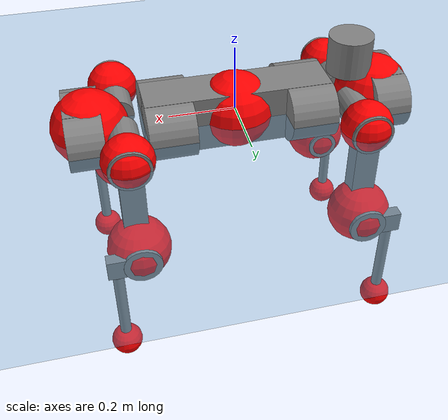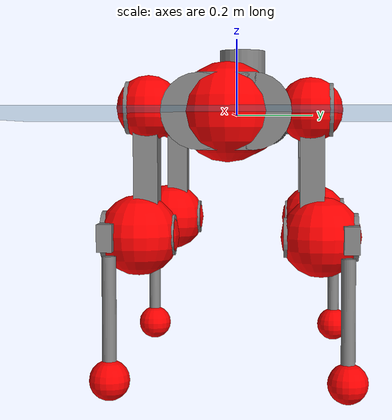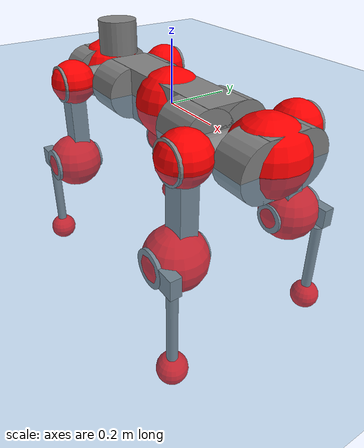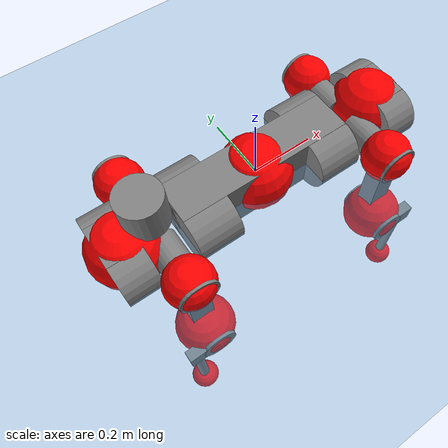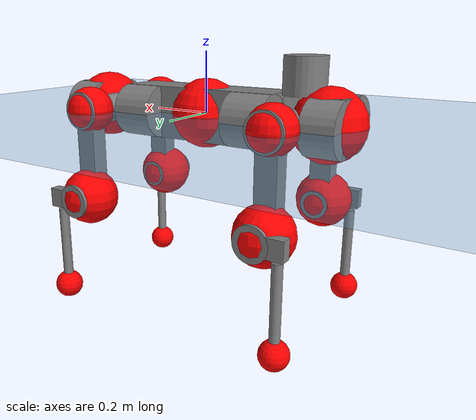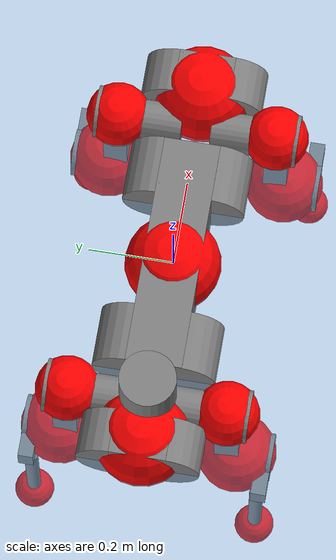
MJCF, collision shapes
<mujoco model="anymal_c">
  <compiler angle="radian" assetdir="assets" balanceinertia="true" inertiafromgeom="false"/>

  <option timestep="0.005" density="1.2" viscosity="2e-05"/>

  <size nkey="1"/>

  <visual>
    <quality shadowsize="8192"/>
    <map shadowclip="0.5"/>
  </visual>

  <default>
    <default class="/">
      <material specular="0" shininess="0.25"/>
      <geom contype="0" conaffinity="0" group="1" solref="-1000 -80"/>
      <site size="0.01 0.005 0.005" group="5"/>
      <general forcelimited="true" forcerange="-80 80" biastype="affine" gainprm="80" biasprm="0 -80 -2"/>
      <default class="anymal_c">
        <joint armature="0.01" damping="0.01" frictionloss="0.1"/>
        <default class="visual">
          <geom type="mesh" group="2"/>
          <default class="visual_zflip"/>
        </default>
        <default class="collision">
          <geom type="cylinder" group="3"/>
          <default class="foot">
            <geom size="0.03 0 0" type="sphere" condim="6" priority="1" friction="0.8 0.02 0.01" solimp="0.015 1 0.03"/>
          </default>
        </default>
      </default>
      <default class="reward_collision_sphere">
        <geom group="5" rgba="1 0 0 1"/>
      </default>
    </default>
  </default>

  <asset>
    <texture type="skybox" colorspace="auto" name="//unnamed_texture_0" builtin="gradient" rgb1="0.95 0.95 0.95" rgb2="0.95 0.95 0.95" width="100" height="600"/>
    <texture type="2d" colorspace="auto" name="texplane" builtin="checker" rgb1="0.345 0.575 0.748" rgb2="0.345 0.575 0.748" markrgb="1 1 1" width="512" height="512"/>
    <texture type="2d" colorspace="linear" name="base" file="base.png"/>
    <texture type="2d" colorspace="linear" name="top_shell" file="top_shell.png"/>
    <texture type="2d" colorspace="linear" name="bottom_shell" file="bottom_shell.png"/>
    <texture type="2d" colorspace="linear" name="remote" file="remote.png"/>
    <texture type="2d" colorspace="linear" name="hatch" file="hatch.png"/>
    <texture type="2d" colorspace="linear" name="handle" file="handle.png"/>
    <texture type="2d" colorspace="linear" name="face" file="face.png"/>
    <texture type="2d" colorspace="linear" name="battery" file="battery.png"/>
    <texture type="2d" colorspace="linear" name="lidar_cage" file="lidar_cage.png"/>
    <texture type="2d" colorspace="linear" name="depth_camera" file="depth_camera.png"/>
    <texture type="2d" colorspace="linear" name="wide_angle_camera" file="wide_angle_camera.png"/>
    <texture type="2d" colorspace="linear" name="lidar" file="lidar.png"/>
    <texture type="2d" colorspace="linear" name="drive" file="drive.png"/>
    <texture type="2d" colorspace="linear" name="hip_l" file="hip_l.png"/>
    <texture type="2d" colorspace="linear" name="shank_l" file="shank_l.png"/>
    <texture type="2d" colorspace="linear" name="foot" file="foot.png"/>
    <texture type="2d" colorspace="linear" name="thigh" file="thigh.png"/>
    <texture type="2d" colorspace="linear" name="shank_r" file="shank_r.png"/>
    <texture type="2d" colorspace="linear" name="hip_r" file="hip_r.png"/>
    <material name="MatPlane" class="/" texture="texplane" texuniform="true" texrepeat="2 2" specular="0.9" shininess="0.5"/>
    <material name="black_plastic" class="/" rgba="0.007 0.007 0.007 1"/>
    <material name="green" class="/" rgba="0.052 0.178 0.033 1"/>
    <material name="red" class="/" rgba="0.178 0.006 0.005 1"/>
    <material name="yellow" class="/" rgba="0.178 0.119 0.006 1"/>
    <material name="lwl" class="/" rgba="0.8 0.8 0.8 1"/>
    <material name="base" class="/" texture="base"/>
    <material name="top_shell" class="/" texture="top_shell"/>
    <material name="bottom_shell" class="/" texture="bottom_shell"/>
    <material name="hip_l" class="/" texture="hip_l"/>
    <material name="thigh" class="/" texture="thigh"/>
    <material name="shank_l" class="/" texture="shank_l"/>
    <material name="foot" class="/" texture="foot"/>
    <material name="hip_r" class="/" texture="hip_r"/>
    <material name="shank" class="/" texture="shank_r"/>
    <material name="hatch" class="/" texture="hatch"/>
    <material name="remote" class="/" texture="remote"/>
    <material name="handle" class="/" texture="handle"/>
    <material name="face" class="/" texture="face"/>
    <material name="depth_camera" class="/" texture="depth_camera"/>
    <material name="wide_angle_camera" class="/" texture="wide_angle_camera"/>
    <material name="battery" class="/" texture="battery"/>
    <material name="lidar_cage" class="/" texture="lidar_cage"/>
    <material name="lidar" class="/" texture="lidar"/>
    <material name="drive" class="/" texture="drive"/>
    <mesh name="base_0" class="/" file="base_0.obj"/>
    <mesh name="base_1" class="/" file="base_1.obj"/>
    <mesh name="base_2" class="/" file="base_2.obj"/>
    <mesh name="base_3" class="/" file="base_3.obj"/>
    <mesh name="base_4" class="/" file="base_4.obj"/>
    <mesh name="base_5" class="/" file="base_5.obj"/>
    <mesh name="top_shell" class="/" file="top_shell.obj"/>
    <mesh name="bottom_shell" class="/" file="bottom_shell.obj"/>
    <mesh name="remote" class="/" file="remote.obj"/>
    <mesh name="handle" class="/" file="handle.obj"/>
    <mesh name="face" class="/" file="face.obj"/>
    <mesh name="wide_angle_camera" class="/" file="wide_angle_camera.obj"/>
    <mesh name="depth_camera" class="/" file="depth_camera.obj"/>
    <mesh name="battery" class="/" file="battery.obj"/>
    <mesh name="lidar_cage" class="/" file="lidar_cage.obj"/>
    <mesh name="lidar" class="/" file="lidar.obj"/>
    <mesh name="drive" class="/" file="drive.obj"/>
    <mesh name="hip_l" class="/" file="hip_l.obj"/>
    <mesh name="thigh" class="/" file="thigh.obj"/>
    <mesh name="shank_l" class="/" file="shank_l.obj"/>
    <mesh name="foot" class="/" file="foot.obj"/>
    <mesh name="hip_r" class="/" file="hip_r.obj"/>
    <mesh name="hatch" class="/" file="hatch.obj"/>
    <mesh name="shank_r" class="/" file="shank_r.obj"/>
  </asset>

  <worldbody>
    <geom name="floor" class="/" size="100 100 0.125" type="plane" group="0" material="MatPlane"/>
    <light name="toplight_shadow" class="/" pos="0 0 5" dir="0.0990148 0.0990148 -0.990148" type="directional" ambient="0.04 0.04 0.04" diffuse="0.55 0.55 0.55" specular="0.12 0.12 0.12"/>
    <light name="toplight_fill" class="/" pos="0 0 5" dir="0.0990148 0.0990148 -0.990148" type="directional" castshadow="false" ambient="0.04 0.04 0.04" diffuse="0.3 0.3 0.3" specular="0.08 0.08 0.08"/>
    <body name="trunk" childclass="anymal_c" pos="-0.00104895 -8.94627e-06 0.000312283" quat="1 -0.000202745 -3.91574e-05 0.000153387">
      <inertial pos="0.00230282 -0.000267542 0.0516613" quat="0.499396 0.493128 0.504789 0.50261" mass="16.4159" diaginertia="0.520316 0.279303 0.281142"/>
      <joint name="//unnamed_joint_0" type="free" armature="0" damping="0" frictionloss="0"/>
      <geom name="//unnamed_geom_1" class="visual" material="green" mesh="base_0"/>
      <geom name="//unnamed_geom_2" class="visual" material="yellow" mesh="base_1"/>
      <geom name="//unnamed_geom_3" class="visual" material="red" mesh="base_2"/>
      <geom name="//unnamed_geom_4" class="visual" material="black_plastic" mesh="base_3"/>
      <geom name="//unnamed_geom_5" class="visual" material="lwl" mesh="base_4"/>
      <geom name="//unnamed_geom_6" class="visual" material="base" mesh="base_5"/>
      <geom name="trunk_1" class="collision" size="0.275624 0.0665298 0.0855384" type="box"/>
      <geom name="trunk_2" class="collision" size="0.0855384 0.0689059" pos="0.207557 0.0594976 0" quat="0.707107 0 0.707107 0"/>
      <geom name="trunk_3" class="collision" size="0.0855384 0.0689059" pos="-0.207557 0.0594976 0" quat="0.707107 0 0.707107 0"/>
      <geom name="trunk_4" class="collision" size="0.0855384 0.0689059" pos="0.207557 -0.0594976 0" quat="0.707107 0 0.707107 0"/>
      <geom name="trunk_5" class="collision" size="0.0855384 0.0689059" pos="-0.207557 -0.0594976 0" quat="0.707107 0 0.707107 0"/>
      <geom name="//unnamed_geom_12" class="visual" material="top_shell" mesh="top_shell"/>
      <geom name="//unnamed_geom_13" class="visual" material="bottom_shell" mesh="bottom_shell"/>
      <geom name="//unnamed_geom_14" class="visual" material="remote" mesh="remote"/>
      <geom name="//unnamed_geom_15" class="visual" material="handle" mesh="handle"/>
      <geom name="//unnamed_geom_16" class="visual" pos="0.39555 0 0" quat="1 0 0 0" material="face" mesh="face"/>
      <geom name="trunk_6" class="collision" size="0.0522735 0.0665298 0.0855384" pos="0.448036 0 0" type="box"/>
      <geom name="//unnamed_geom_18" class="collision" size="0.0855384 0.0522735" pos="0.448036 0.0594976 0" quat="0.707107 0 0.707107 0"/>
      <geom name="//unnamed_geom_19" class="collision" size="0.0855384 0.0522735" pos="0.448036 -0.0594976 0" quat="0.707107 0 0.707107 0"/>
      <geom name="//unnamed_geom_20" class="visual" pos="0.440549 0 -0.0312782" quat="0.965926 0 0.258819 0" material="depth_camera" mesh="depth_camera"/>
      <geom name="//unnamed_geom_21" class="visual" pos="0.489547 0 0.015674" material="wide_angle_camera" mesh="wide_angle_camera"/>
      <geom name="//unnamed_geom_22" class="visual_zflip" pos="-0.39555 0 0" quat="0 0 0 1" material="face" mesh="face"/>
      <geom name="trunk_7" class="collision" size="0.0522735 0.0665298 0.0855384" pos="-0.448036 0 0" quat="0 0 0 1" type="box"/>
      <geom name="//unnamed_geom_24" class="collision" size="0.0855384 0.0522735" pos="-0.448036 -0.0594976 0" quat="0 -0.707107 0 0.707107"/>
      <geom name="//unnamed_geom_25" class="collision" size="0.0855384 0.0522735" pos="-0.448036 0.0594976 0" quat="0 -0.707107 0 0.707107"/>
      <geom name="//unnamed_geom_26" class="visual" pos="-0.440549 0 -0.0312782" quat="0 -0.258819 0 0.965926" material="depth_camera" mesh="depth_camera"/>
      <geom name="//unnamed_geom_27" class="visual_zflip" pos="-0.489547 0 0.015674" quat="0 0 0 1" material="wide_angle_camera" mesh="wide_angle_camera"/>
      <geom name="//unnamed_geom_28" class="visual" material="battery" mesh="battery"/>
      <geom name="//unnamed_geom_29" class="visual" pos="0 0.0636234 0.0297114" quat="0.683013 -0.183013 0.183013 0.683013" material="depth_camera" mesh="depth_camera"/>
      <geom name="//unnamed_geom_30" class="visual" pos="0 -0.0636234 0.0297114" quat="0.683013 0.183013 0.183013 -0.683013" material="depth_camera" mesh="depth_camera"/>
      <geom name="//unnamed_geom_31" class="visual" pos="-0.347359 0 0.0769568" quat="1 0 0 0" material="lidar_cage" mesh="lidar_cage"/>
      <geom name="trunk_8" class="collision" size="0.0665298 0.0570256" pos="-0.347359 0 0.139779"/>
      <geom name="//unnamed_geom_33" class="visual" pos="-0.347359 -4.09835e-05 0.148888" quat="0.707107 0 0 -0.707107" material="lidar" mesh="lidar"/>
      <geom name="//unnamed_geom_34" class="visual" pos="0.286189 0.0884664 -3.39939e-09" quat="0.258819 0.965926 0 0" material="drive" mesh="drive"/>
      <geom name="//unnamed_geom_35" class="visual" pos="0.286189 -0.0884664 3.39939e-09" quat="0.258819 -0.965926 0 0" material="drive" mesh="drive"/>
      <geom name="//unnamed_geom_36" class="visual" pos="-0.286189 0.0884664 3.39939e-09" quat="0 0 0.965926 -0.258819" material="drive" mesh="drive"/>
      <geom name="//unnamed_geom_37" class="visual" pos="-0.286189 -0.0884664 -3.39939e-09" quat="0 0 -0.965926 -0.258819" material="drive" mesh="drive"/>
      <geom name="//unnamed_geom_38" class="visual" pos="0.110697 0 0.0764332" quat="1 0 0 0" material="hatch" mesh="hatch"/>
      <geom name="//unnamed_geom_39" class="reward_collision_sphere" size="0.114051"/>
      <geom name="//unnamed_geom_40" class="reward_collision_sphere" size="0.114051" pos="0.429427 0 0"/>
      <geom name="//unnamed_geom_41" class="reward_collision_sphere" size="0.114051" pos="-0.429427 0 0"/>
      <site name="imu" pos="0.237409 -0.00571224 0.0533905" size="0.00950426"/>
      <camera name="track" pos="0 -1.69993 0" quat="0.707107 0.707107 0 0" mode="trackcom"/>
      <camera name="ego_camera" pos="0.429427 0 -0.0418812" quat="-0.5 -0.5 0.5 0.5"/>
      <body name="LF_HIP" pos="0.286574 0.0889582 -4.82065e-05" quat="0.258515 0.966006 0.000619275 0.00115573">
        <inertial pos="0.0544079 -0.0121332 -0.00758253" quat="-0.127132 0.709236 -0.12985 0.681147" mass="2.45969" diaginertia="0.00477494 0.0022452 0.00424824"/>
        <joint name="LF_HAA" pos="0 0 0" axis="0.999992 -0.000822268 0.00389795" range="-0.673891 0.488748" armature="0.0101698" damping="0.0123318" frictionloss="0.0956556"/>
        <geom name="//unnamed_geom_42" class="visual" pos="0 -0.000199971 3.28451e-05" quat="0.258819 -0.965926 0 0" material="hip_l" mesh="hip_l"/>
        <geom name="//unnamed_geom_43" class="visual" pos="0.0571616 -0.0679599 -0.0406943" quat="0.183013 -0.683013 0.683013 0.183013" material="drive" mesh="drive"/>
        <geom name="//unnamed_geom_44" class="collision" size="0.0475213 0.0665298" pos="0.0571615 -0.0101654 -0.00722975" quat="-0.353553 -0.612372 0.612372 -0.353553"/>
        <body name="LF_THIGH" pos="0.0574318 -0.062288 -0.0426859" quat="0.182858 -0.682964 0.683141 0.18287">
          <inertial pos="0.0294914 -0.0022129 -0.259754" quat="0.992644 -0.00364111 -0.0852155 0.0859282" mass="2.66289" diaginertia="0.0239705 0.0133402 0.00525946"/>
          <joint name="LF_HFE" pos="0 0 0" axis="0.999999 -0.00067333 0.00144612" range="-3.14293 3.18886" armature="0.00960921" damping="0" frictionloss="0.0952827"/>
          <geom name="//unnamed_geom_45" class="visual" pos="0.0020755 3.27051e-06 0" quat="0.707107 0 0 -0.707107" material="thigh" mesh="thigh"/>
          <geom name="//unnamed_geom_46" class="collision" size="0.0617777 0.0380171" pos="0.0381713 0 0" quat="0.5 0.5 -0.5 -0.5"/>
          <geom name="//unnamed_geom_47" class="collision" size="0.035641 0.0285128 0.134309" pos="0.0286285 0 -0.14796" quat="0.707107 0 0 -0.707107" type="box"/>
          <geom name="//unnamed_geom_48" class="visual" pos="0.0957146 0 -0.298404" quat="1 0 0 0" material="drive" mesh="drive"/>
          <geom name="//unnamed_geom_49" class="collision" size="0.0475213 0.0665298" pos="0.0289148 0 -0.298404" quat="0.707107 0 0.707107 0"/>
          <geom name="//unnamed_geom_50" class="reward_collision_sphere" size="0.0760341" pos="0.0238571 0 0"/>
          <body name="LF_SHANK" pos="0.0981996 0.00196535 -0.297367" quat="1 -1.34793e-05 6.73143e-06 -0.000106575">
            <inertial pos="0.00614522 -0.0520092 -0.0836702" quat="0.993003 -0.115517 -0.000572506 -0.024501" mass="0.518452" diaginertia="0.00811561 0.00413048 0.00140942"/>
            <joint name="LF_KFE" pos="0 0 0" axis="0.999999 0.000920559 -0.00143401" range="-3.12645 3.098" armature="0.00944926" damping="0.00931637" frictionloss="0.0940816"/>
            <geom name="//unnamed_geom_51" class="visual" pos="0.000676777 0.00360861 0" quat="0.707107 0 0 -0.707107" material="shank_l" mesh="shank_l"/>
            <geom name="LF_kfe_act" class="collision" size="0.0570256 0.0190085" pos="0.0190857 0 0" quat="0.5 0.5 -0.5 -0.5"/>
            <geom name="//unnamed_geom_53" class="collision" size="0.0546486 0.0320769 0.0180581" pos="0.0190857 -0.0488722 0" quat="0.5 0.5 -0.5 -0.5" type="box"/>
            <geom name="//unnamed_geom_54" class="visual" pos="0.0124532 -0.0735916 -0.353865" quat="0.382683 0 0 -0.92388" material="foot" mesh="foot"/>
            <geom name="LF_calf" class="collision" size="0.0166325 0.13425" pos="0.0124534 -0.0747545 -0.176932" quat="0.707107 0 0 -0.707107"/>
            <geom name="LF_foot" class="foot" size="0.0272028" pos="0.0124534 -0.0747545 -0.330307" quat="0.707107 0 0 -0.707107"/>
            <geom name="//unnamed_geom_57" class="reward_collision_sphere" size="0.0950426" pos="-0.0477141 0 0"/>
            <geom name="//unnamed_geom_58" class="reward_collision_sphere" size="0.0475213" pos="0.0124534 -0.0747545 -0.330307"/>
            <site name="LF_foot" class="foot" pos="0.0124534 -0.0747545 -0.330307" quat="0.707107 0 0 -0.707107" size="0.00950426"/>
          </body>
        </body>
      </body>
      <body name="RF_HIP" pos="0.286579 -0.089277 0.00252596" quat="0.258858 -0.965915 -0.000161072 2.95633e-05">
        <inertial pos="0.0551059 0.0127719 -0.00893207" quat="0.138558 0.675558 0.118451 0.714417" mass="2.45302" diaginertia="0.00478822 0.00222568 0.0042415"/>
        <joint name="RF_HAA" pos="0 0 0" axis="1 0.00040342 -0.000671152" range="-0.46984 0.731159" armature="0.00959127" damping="0.00973565" frictionloss="0.0901505"/>
        <geom name="//unnamed_geom_59" class="visual" pos="0 0.000199969 3.2845e-05" quat="0.258819 0.965926 0 0" material="hip_r" mesh="hip_r"/>
        <geom name="//unnamed_geom_60" class="visual" pos="0.0571615 0.0679599 -0.0406943" quat="0.183013 0.683013 0.683013 -0.183013" material="drive" mesh="drive"/>
        <geom name="//unnamed_geom_61" class="collision" size="0.0475213 0.0665298" pos="0.0571615 0.0101654 -0.00722975" quat="-0.353553 0.612372 0.612372 0.353553"/>
        <body name="RF_THIGH" pos="0.0571032 0.0619213 -0.0457622" quat="0.182797 0.682842 0.6832 -0.183167">
          <inertial pos="0.029294 -9.9225e-05 -0.259423" quat="0.993841 -0.00168849 -0.0802944 0.076352" mass="2.67927" diaginertia="0.0247093 0.0136398 0.00541636"/>
          <joint name="RF_HFE" pos="0 0 0" axis="1 -2.86368e-05 -0.000277919" stiffness="0.00510796" range="-3.19015 3.17129" armature="0.00880332" damping="0.0100181" frictionloss="0.0914736"/>
          <geom name="//unnamed_geom_62" class="visual" pos="0.0020755 3.27051e-06 0" quat="0.707107 0 0 -0.707107" material="thigh" mesh="thigh"/>
          <geom name="//unnamed_geom_63" class="collision" size="0.0617777 0.0380171" pos="0.0381713 0 0" quat="0.5 0.5 0.5 0.5"/>
          <geom name="//unnamed_geom_64" class="collision" size="0.035641 0.0285128 0.134309" pos="0.0286285 0 -0.14796" quat="0.707107 0 0 0.707107" type="box"/>
          <geom name="//unnamed_geom_65" class="visual" pos="0.0957146 0 -0.298404" quat="1 0 0 0" material="drive" mesh="drive"/>
          <geom name="//unnamed_geom_66" class="collision" size="0.0475213 0.0665298" pos="0.0289148 0 -0.298404" quat="0.707107 0 0.707107 0"/>
          <geom name="//unnamed_geom_67" class="reward_collision_sphere" size="0.0760341" pos="0.0238571 0 0"/>
          <body name="RF_SHANK" pos="0.0956383 0.000728822 -0.298884" quat="1 -1.27e-06 1.26096e-05 -4.86466e-05">
            <inertial pos="0.00470543 0.0523669 -0.0817214" quat="0.992889 0.116221 -0.00103778 0.0257392" mass="0.480094" diaginertia="0.00770615 0.00409307 0.00132539"/>
            <joint name="RF_KFE" pos="0 0 0" axis="0.999997 0.00213318 -0.000929052" range="-3.12221 3.13945" armature="0.0101039" damping="0.00898012" frictionloss="0.0950772"/>
            <geom name="//unnamed_geom_68" class="visual" pos="0.000676773 -0.0036086 0" quat="0.707107 0 0 0.707107" material="shank" mesh="shank_r"/>
            <geom name="RF_kfe_act" class="collision" size="0.0570256 0.0190085" pos="0.0190857 0 0" quat="0.5 0.5 0.5 0.5"/>
            <geom name="//unnamed_geom_70" class="collision" size="0.0546486 0.0320769 0.0180581" pos="0.0190857 0.0488722 0" quat="0.5 0.5 0.5 0.5" type="box"/>
            <geom name="//unnamed_geom_71" class="visual" pos="0.0124536 0.0735916 -0.353865" quat="0.382683 0 0 0.92388" material="foot" mesh="foot"/>
            <geom name="RF_calf" class="collision" size="0.0166325 0.13425" pos="0.0124534 0.0747545 -0.176932" quat="0.707107 0 0 0.707107"/>
            <geom name="RF_foot" class="foot" size="0.0280119" pos="0.0124534 0.0747545 -0.330307" quat="0.707107 0 0 0.707107"/>
            <geom name="//unnamed_geom_74" class="reward_collision_sphere" size="0.0950426" pos="-0.0477141 0 0"/>
            <geom name="//unnamed_geom_75" class="reward_collision_sphere" size="0.0475213" pos="0.0124534 0.0747545 -0.330307"/>
            <site name="RF_foot" class="foot" pos="0.0124534 0.0747545 -0.330307" quat="0.707107 0 0 0.707107" size="0.00950426"/>
          </body>
        </body>
      </body>
      <body name="LH_HIP" pos="-0.285754 0.0892235 -0.00148802" quat="0.000103258 0.00016488 0.965983 -0.258604">
        <inertial pos="0.0538723 0.0122705 -0.010992" quat="0.135251 0.678885 0.128432 0.71016" mass="2.44715" diaginertia="0.00473862 0.00215577 0.00415672"/>
        <joint name="LH_HAA" pos="0 0 0" axis="0.999999 -0.000516361 0.00091253" range="-0.443115 0.767404" armature="0.00951759" damping="0.0069233" frictionloss="0.105547"/>
        <geom name="//unnamed_geom_76" class="visual" pos="0 0.000199969 3.2845e-05" quat="-0.258819 -0.965926 0 0" material="hip_r" mesh="hip_r"/>
        <geom name="//unnamed_geom_77" class="visual" pos="0.0571615 0.0679599 -0.0406943" quat="0.183013 0.683013 0.683013 -0.183013" material="drive" mesh="drive"/>
        <geom name="//unnamed_geom_78" class="collision" size="0.0475213 0.0665298" pos="0.0571615 0.0101654 -0.00722975" quat="-0.353553 0.612372 0.612372 0.353553"/>
        <body name="LH_THIGH" pos="0.0568389 0.0623149 -0.044925" quat="0.182895 0.683126 0.682978 -0.182836">
          <inertial pos="0.0273779 -0.000105296 -0.259591" quat="0.993355 0.00439456 -0.076403 0.0859612" mass="2.62391" diaginertia="0.0229919 0.0131446 0.00506543"/>
          <joint name="LH_HFE" pos="0 0 0" axis="0.999926 0.0109914 0.00527715" range="-3.18626 3.15338" armature="0.00907034" damping="0.00290807" frictionloss="0.0961543"/>
          <geom name="//unnamed_geom_79" class="visual" pos="0.0020755 3.27051e-06 0" quat="0.707107 0 0 -0.707107" material="thigh" mesh="thigh"/>
          <geom name="//unnamed_geom_80" class="collision" size="0.0617777 0.0380171" pos="0.0381713 0 0" quat="0.5 0.5 -0.5 -0.5"/>
          <geom name="//unnamed_geom_81" class="collision" size="0.035641 0.0285128 0.134309" pos="0.0286285 0 -0.14796" quat="0.707107 0 0 -0.707107" type="box"/>
          <geom name="//unnamed_geom_82" class="visual" pos="0.0957146 0 -0.298404" quat="1 0 0 0" material="drive" mesh="drive"/>
          <geom name="//unnamed_geom_83" class="collision" size="0.0475213 0.0665298" pos="0.0289148 0 -0.298404" quat="0.707107 0 0.707107 0"/>
          <geom name="//unnamed_geom_84" class="reward_collision_sphere" size="0.0760341" pos="0.0238571 0 0"/>
          <body name="LH_SHANK" pos="0.095603 -0.00143798 -0.299992" quat="1 0.000130989 0.000450531 -0.00013411">
            <inertial pos="0.00527598 0.0516051 -0.0837581" quat="0.993305 0.114144 0.000826003 0.0177637" mass="0.496973" diaginertia="0.00802338 0.00405303 0.00142591"/>
            <joint name="LH_KFE" pos="0 0 0" axis="0.999994 0.000386715 -0.00348495" range="-3.16507 3.14101" armature="0.00969063" damping="0.0075243" frictionloss="0.0958981"/>
            <geom name="//unnamed_geom_85" class="visual" pos="0.000676773 -0.0036086 0" quat="-0.707107 0 0 -0.707107" material="shank" mesh="shank_r"/>
            <geom name="LH_kfe_act" class="collision" size="0.0570256 0.0190085" pos="0.0190857 0 0" quat="0.5 0.5 -0.5 -0.5"/>
            <geom name="//unnamed_geom_87" class="collision" size="0.0546486 0.0320769 0.0180581" pos="0.0190857 0.0488722 0" quat="0.5 0.5 -0.5 -0.5" type="box"/>
            <geom name="//unnamed_geom_88" class="visual" pos="0.0124536 0.0735916 -0.353865" quat="-0.382683 0 0 -0.92388" material="foot" mesh="foot"/>
            <geom name="LH_calf" class="collision" size="0.0166325 0.13425" pos="0.0124534 0.0747545 -0.176932" quat="0.707107 0 0 -0.707107"/>
            <geom name="LH_foot" class="foot" size="0.0316112" pos="0.0124534 0.0747545 -0.330307" quat="0.707107 0 0 -0.707107"/>
            <geom name="//unnamed_geom_91" class="reward_collision_sphere" size="0.0950426" pos="-0.0477141 0 0"/>
            <geom name="//unnamed_geom_92" class="reward_collision_sphere" size="0.0475213" pos="0.0124534 0.0747545 -0.330307"/>
            <site name="LH_foot" class="foot" pos="0.0124534 0.0747545 -0.330307" quat="0.707107 0 0 -0.707107" size="0.00950426"/>
          </body>
        </body>
      </body>
      <body name="RH_HIP" pos="-0.286084 -0.0870767 0.000457169" quat="-0.00034591 -0.000157279 -0.965821 -0.259208">
        <inertial pos="0.0539642 -0.0109876 -0.010003" quat="-0.127658 0.709606 -0.13519 0.679622" mass="2.29225" diaginertia="0.00450608 0.00212711 0.00400238"/>
        <joint name="RH_HAA" pos="0 0 0" axis="0.999984 0.00507758 -0.00262974" range="-0.742412 0.459876" armature="0.00950699" damping="0.000110238" frictionloss="0.0903608"/>
        <geom name="//unnamed_geom_93" class="visual" pos="0 -0.000199971 3.28451e-05" quat="-0.258819 0.965926 0 0" material="hip_l" mesh="hip_l"/>
        <geom name="//unnamed_geom_94" class="visual" pos="0.0571616 -0.0679599 -0.0406943" quat="-0.183013 0.683013 -0.683013 -0.183013" material="drive" mesh="drive"/>
        <geom name="//unnamed_geom_95" class="collision" size="0.0475213 0.0665298" pos="0.0571615 -0.0101654 -0.00722975" quat="0.353553 0.612372 -0.612372 0.353553"/>
        <body name="RH_THIGH" pos="0.0563416 -0.0613462 -0.0416675" quat="-0.182961 0.682884 -0.683152 -0.183024">
          <inertial pos="0.0293656 0.000956285 -0.257199" quat="0.993134 -0.00504938 -0.0809399 0.0843121" mass="2.52312" diaginertia="0.0232425 0.012897 0.00525806"/>
          <joint name="RH_HFE" pos="0 0 0" axis="0.999986 0.000892375 -0.00523857" stiffness="0.00227447" range="-3.18789 3.18816" armature="0.00956897" damping="0.00686331" frictionloss="0.0865999"/>
          <geom name="//unnamed_geom_96" class="visual" pos="0.0020755 3.27051e-06 0" quat="0.707107 0 0 -0.707107" material="thigh" mesh="thigh"/>
          <geom name="//unnamed_geom_97" class="collision" size="0.0617777 0.0380171" pos="0.0381713 0 0" quat="0.5 0.5 0.5 0.5"/>
          <geom name="//unnamed_geom_98" class="collision" size="0.035641 0.0285128 0.134309" pos="0.0286285 0 -0.14796" quat="0.707107 0 0 0.707107" type="box"/>
          <geom name="//unnamed_geom_99" class="visual" pos="0.0957146 0 -0.298404" quat="1 0 0 0" material="drive" mesh="drive"/>
          <geom name="//unnamed_geom_100" class="collision" size="0.0475213 0.0665298" pos="0.0289148 0 -0.298404" quat="0.707107 0 0.707107 0"/>
          <geom name="//unnamed_geom_101" class="reward_collision_sphere" size="0.0760341" pos="0.0238571 0 0"/>
          <body name="RH_SHANK" pos="0.097546 -0.000225225 -0.298206" quat="1 4.16137e-05 0.00025485 -0.000212851">
            <inertial pos="0.00430504 -0.0518701 -0.0845919" quat="0.992961 -0.115787 -0.00107484 -0.0249123" mass="0.492188" diaginertia="0.00803558 0.0040335 0.00140461"/>
            <joint name="RH_KFE" pos="0 0 0" axis="0.999974 0.00252962 -0.00668677" range="-3.13034 3.13834" armature="0.00973221" damping="0" frictionloss="0.0961115"/>
            <geom name="//unnamed_geom_102" class="visual" pos="0.000676777 0.00360861 0" quat="0.707107 0 0 -0.707107" material="shank_l" mesh="shank_l"/>
            <geom name="RH_kfe_act" class="collision" size="0.0570256 0.0190085" pos="0.0190857 0 0" quat="0.5 0.5 0.5 0.5"/>
            <geom name="//unnamed_geom_104" class="collision" size="0.0546486 0.0320769 0.0180581" pos="0.0190857 -0.0488722 0" quat="0.5 0.5 0.5 0.5" type="box"/>
            <geom name="//unnamed_geom_105" class="visual" pos="0.0124532 -0.0735916 -0.353865" quat="0.382683 0 0 -0.92388" material="foot" mesh="foot"/>
            <geom name="RH_calf" class="collision" size="0.0166325 0.13425" pos="0.0124534 -0.0747545 -0.176932" quat="0.707107 0 0 0.707107"/>
            <geom name="RH_foot" class="foot" size="0.0296828" pos="0.0124534 -0.0747545 -0.330307" quat="0.707107 0 0 0.707107"/>
            <geom name="//unnamed_geom_108" class="reward_collision_sphere" size="0.0950426" pos="-0.0477141 0 0"/>
            <geom name="//unnamed_geom_109" class="reward_collision_sphere" size="0.0475213" pos="0.0124534 -0.0747545 -0.330307"/>
            <site name="RH_foot" class="foot" pos="0.0124534 -0.0747545 -0.330307" quat="0.707107 0 0 0.707107" size="0.00950426"/>
          </body>
        </body>
      </body>
    </body>
  </worldbody>

  <contact>
    <pair class="/" geom1="floor" geom2="LF_foot" name="//unnamed_contact_0"/>
    <pair class="/" geom1="floor" geom2="RF_foot" name="//unnamed_contact_1"/>
    <pair class="/" geom1="floor" geom2="LH_foot" name="//unnamed_contact_2"/>
    <pair class="/" geom1="floor" geom2="RH_foot" name="//unnamed_contact_3"/>
  </contact>

  <actuator>
    <general name="LF_HAA" class="/" joint="LF_HAA" forcerange="-73.6764 73.6764" gainprm="76.5343" biasprm="0 -76.5343 -2.00372"/>
    <general name="LF_HFE" class="/" joint="LF_HFE" forcerange="-81.8203 81.8203" gainprm="76.5343" biasprm="0 -76.5343 -2.00372"/>
    <general name="LF_KFE" class="/" joint="LF_KFE" forcerange="-70.2268 70.2268" gainprm="76.5343" biasprm="0 -76.5343 -2.00372"/>
    <general name="RF_HAA" class="/" joint="RF_HAA" forcerange="-77.4635 77.4635" gainprm="76.5343" biasprm="0 -76.5343 -2.00372"/>
    <general name="RF_HFE" class="/" joint="RF_HFE" forcerange="-79.4055 79.4055" gainprm="76.5343" biasprm="0 -76.5343 -2.00372"/>
    <general name="RF_KFE" class="/" joint="RF_KFE" forcerange="-83.363 83.363" gainprm="76.5343" biasprm="0 -76.5343 -2.00372"/>
    <general name="LH_HAA" class="/" joint="LH_HAA" forcerange="-83.1355 83.1355" gainprm="76.5343" biasprm="0 -76.5343 -2.00372"/>
    <general name="LH_HFE" class="/" joint="LH_HFE" forcerange="-76.1157 76.1157" gainprm="76.5343" biasprm="0 -76.5343 -2.00372"/>
    <general name="LH_KFE" class="/" joint="LH_KFE" forcerange="-77.5124 77.5124" gainprm="76.5343" biasprm="0 -76.5343 -2.00372"/>
    <general name="RH_HAA" class="/" joint="RH_HAA" forcerange="-75.9174 75.9174" gainprm="76.5343" biasprm="0 -76.5343 -2.00372"/>
    <general name="RH_HFE" class="/" joint="RH_HFE" forcerange="-69.1493 69.1493" gainprm="76.5343" biasprm="0 -76.5343 -2.00372"/>
    <general name="RH_KFE" class="/" joint="RH_KFE" forcerange="-71.5241 71.5241" gainprm="76.5343" biasprm="0 -76.5343 -2.00372"/>
  </actuator>

  <sensor>
    <gyro site="imu" name="imu_angular_velocity"/>
    <velocimeter site="imu" name="imu_linear_velocity"/>
    <framelinvel objtype="site" objname="LF_foot" name="LF_foot_global_linear_velocity"/>
    <framelinvel objtype="site" objname="RF_foot" name="RF_foot_global_linear_velocity"/>
    <framelinvel objtype="site" objname="LH_foot" name="LH_foot_global_linear_velocity"/>
    <framelinvel objtype="site" objname="RH_foot" name="RH_foot_global_linear_velocity"/>
  </sensor>

  <keyframe>
    <key name="home" qpos="0 0 0.55 1 0 0 0 0 0.4 -0.8 0 -0.4 0.8 0 -0.4 0.8 0 0.4 -0.8"/>
  </keyframe>
</mujoco>
